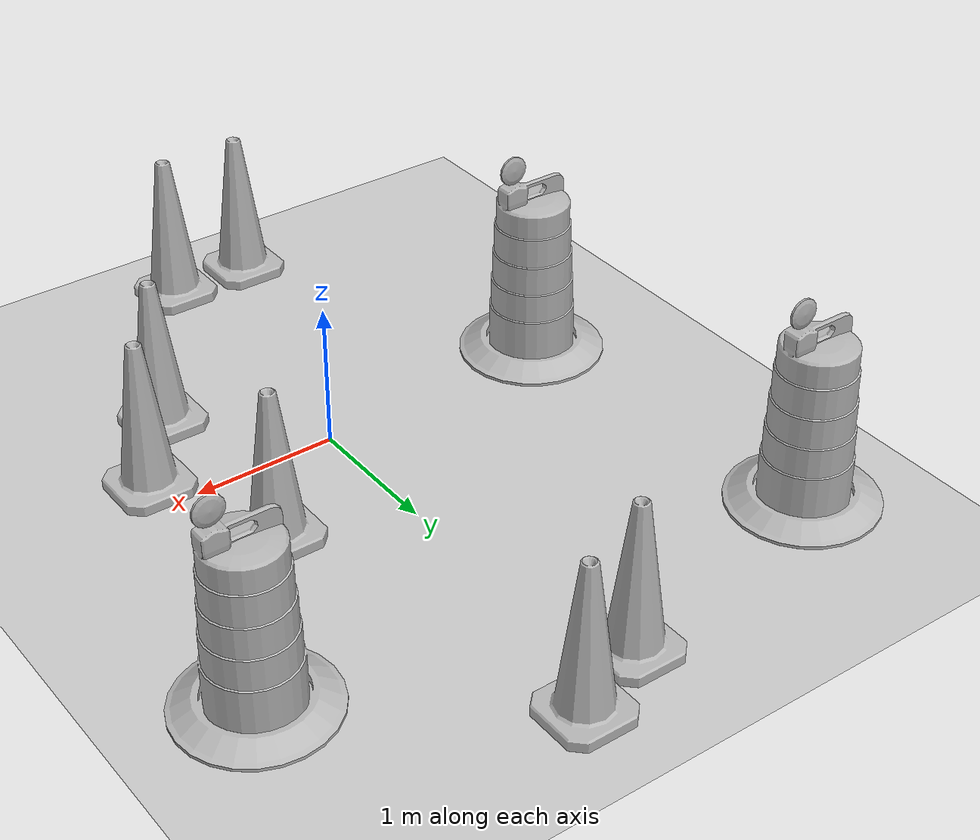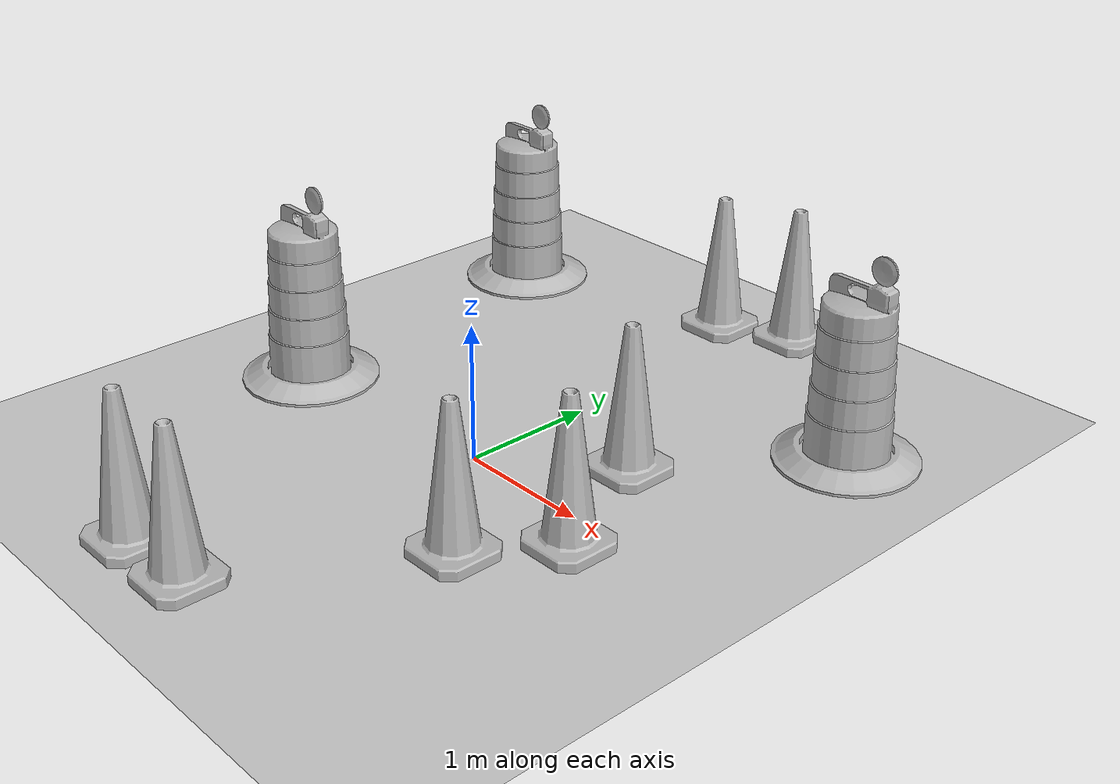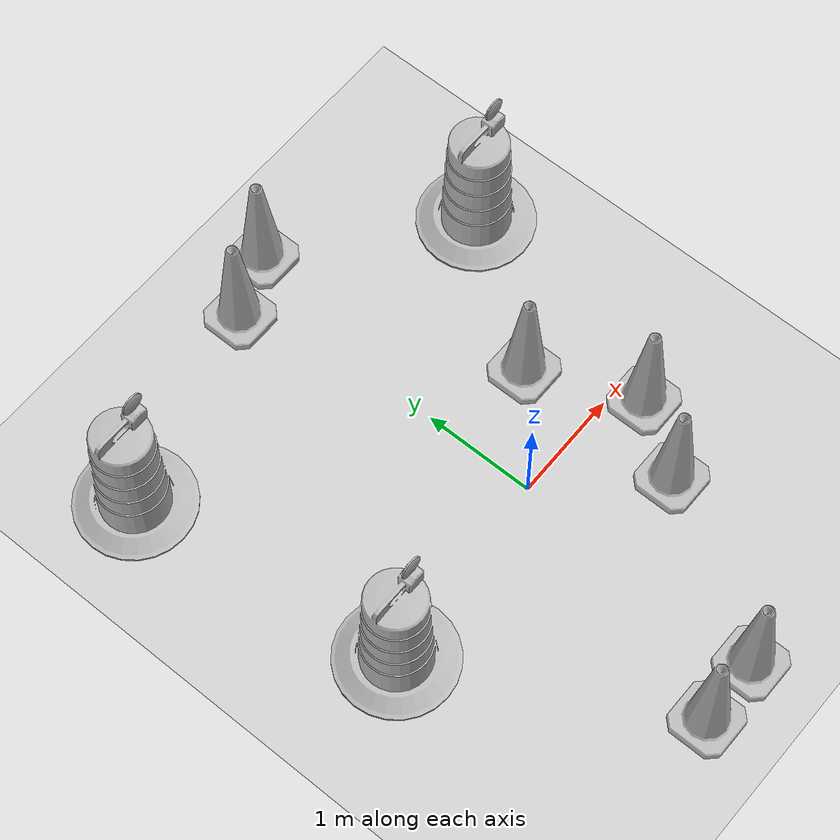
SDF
<sdf version="1.7">
 <world name="default">
  <light name="sun" type="directional">
   <pose>0 0 10 0 -0 0</pose>
   <diffuse>0.8 0.8 0.8 1</diffuse>
   <specular>0.2 0.2 0.2 1</specular>
   <attenuation>
    <range>1000</range>
    <constant>0.9</constant>
    <linear>0.01</linear>
    <quadratic>0.001</quadratic>
   </attenuation>
   <direction>-0.5 0.1 -0.9</direction>
   <spot><inner_angle>0</inner_angle><outer_angle>0</outer_angle><falloff>0</falloff></spot>
  </light>
  <model name="ground_plane">
   <static>1</static>
   <link name="link">
    <collision name="collision">
     <geometry><plane><normal>0 0 1</normal><size>100 100</size></plane></geometry>
     <surface>
      <contact><collide_bitmask>65535</collide_bitmask></contact>
      <friction><ode><mu>100</mu><mu2>50</mu2></ode></friction>
     </surface>
    </collision>
    <visual name="visual">
     <cast_shadows>0</cast_shadows>
     <geometry><plane><normal>0 0 1</normal><size>100 100</size></plane></geometry>
     <material>
      <script><uri>file://media/materials/scripts/gazebo.material</uri><name>Gazebo/Grey</name></script>
     </material>
    </visual>
   </link>
  </model>
  <gravity>0 0 -9.8</gravity>
  <magnetic_field>6e-06 2.3e-05 -4.2e-05</magnetic_field>
  <atmosphere type="adiabatic"/>
  <physics type="ode">
   <max_step_size>0.001</max_step_size>
   <real_time_factor>1</real_time_factor>
   <real_time_update_rate>1000</real_time_update_rate>
  </physics>
  <scene><ambient>0.4 0.4 0.4 1</ambient><background>0.7 0.7 0.7 1</background><shadows>1</shadows></scene>
  <spherical_coordinates>
   <surface_model>EARTH_WGS84</surface_model>
   <latitude_deg>0</latitude_deg>
   <longitude_deg>0</longitude_deg>
   <elevation>0</elevation>
   <heading_deg>0</heading_deg>
  </spherical_coordinates>
  <model name="Construction Barrel">
   <link name="link">
    <inertial>
     <pose>0 0 0.4 0 -0 0</pose>
     <mass>500</mass>
     <inertia><ixx>51.2096</ixx><iyy>51.2096</iyy><izz>25</izz><ixy>0</ixy><ixz>0</ixz><iyz>0</iyz></inertia>
    </inertial>
    <collision name="collision">
     <geometry><mesh><uri>model://construction_barrel/meshes/construction_barrel.dae</uri></mesh></geometry>
    </collision>
    <visual name="visual">
     <geometry><mesh><uri>model://construction_barrel/meshes/construction_barrel.dae</uri></mesh></geometry>
    </visual>
   </link>
   <pose>-2.06492 2.3193 2e-06 2e-06 4e-06 -1.9e-05</pose>
  </model>
  <model name="Construction Barrel_0">
   <link name="link">
    <inertial>
     <pose>0 0 0.4 0 -0 0</pose>
     <mass>500</mass>
     <inertia><ixx>51.2096</ixx><iyy>51.2096</iyy><izz>25</izz><ixy>0</ixy><ixz>0</ixz><iyz>0</iyz></inertia>
    </inertial>
    <collision name="collision">
     <geometry><mesh><uri>model://construction_barrel/meshes/construction_barrel.dae</uri></mesh></geometry>
    </collision>
    <visual name="visual">
     <geometry><mesh><uri>model://construction_barrel/meshes/construction_barrel.dae</uri></mesh></geometry>
    </visual>
   </link>
   <pose>-1.75776 -0.114884 -0 0 0 -1.8e-05</pose>
  </model>
  <model name="Construction Barrel_1">
   <link name="link">
    <inertial>
     <pose>0 0 0.4 0 -0 0</pose>
     <mass>500</mass>
     <inertia><ixx>51.2096</ixx><iyy>51.2096</iyy><izz>25</izz><ixy>0</ixy><ixz>0</ixz><iyz>0</iyz></inertia>
    </inertial>
    <collision name="collision">
     <geometry><mesh><uri>model://construction_barrel/meshes/construction_barrel.dae</uri></mesh></geometry>
    </collision>
    <visual name="visual">
     <geometry><mesh><uri>model://construction_barrel/meshes/construction_barrel.dae</uri></mesh></geometry>
    </visual>
   </link>
   <pose>1.68494 1.88719 -2e-06 0 7e-06 -1.5e-05</pose>
  </model>
  <model name="Construction Cone">
   <link name="link">
    <collision name="collision">
     <geometry>
      <mesh><scale>10 10 10</scale><uri>model://construction_cone/meshes/construction_cone.dae</uri></mesh>
     </geometry>
    </collision>
    <visual name="visual">
     <geometry>
      <mesh><scale>10 10 10</scale><uri>model://construction_cone/meshes/construction_cone.dae</uri></mesh>
     </geometry>
    </visual>
    <inertial>
     <inertia><ixx>1</ixx><ixy>0</ixy><ixz>0</ixz><iyy>1</iyy><iyz>0</iyz><izz>1</izz></inertia>
     <mass>1</mass>
    </inertial>
   </link>
   <pose>0.796348 -0.830084 -1e-06 2e-06 2e-06 0</pose>
  </model>
  <model name="Construction Cone_0">
   <link name="link">
    <collision name="collision">
     <geometry>
      <mesh><scale>10 10 10</scale><uri>model://construction_cone/meshes/construction_cone.dae</uri></mesh>
     </geometry>
    </collision>
    <visual name="visual">
     <geometry>
      <mesh><scale>10 10 10</scale><uri>model://construction_cone/meshes/construction_cone.dae</uri></mesh>
     </geometry>
    </visual>
    <inertial>
     <inertia><ixx>1</ixx><ixy>0</ixy><ixz>0</ixz><iyy>1</iyy><iyz>0</iyz><izz>1</izz></inertia>
     <mass>1</mass>
    </inertial>
   </link>
   <pose>1.20796 -0.241738 -0 0 -0 0</pose>
  </model>
  <model name="Construction Cone_1">
   <link name="link">
    <collision name="collision">
     <geometry>
      <mesh><scale>10 10 10</scale><uri>model://construction_cone/meshes/construction_cone.dae</uri></mesh>
     </geometry>
    </collision>
    <visual name="visual">
     <geometry>
      <mesh><scale>10 10 10</scale><uri>model://construction_cone/meshes/construction_cone.dae</uri></mesh>
     </geometry>
    </visual>
    <inertial>
     <inertia><ixx>1</ixx><ixy>0</ixy><ixz>0</ixz><iyy>1</iyy><iyz>0</iyz><izz>1</izz></inertia>
     <mass>1</mass>
    </inertial>
   </link>
   <pose>0.810054 0.677931 -1e-05 0 -0 0</pose>
  </model>
  <model name="Construction Cone_2">
   <link name="link">
    <collision name="collision">
     <geometry>
      <mesh><scale>10 10 10</scale><uri>model://construction_cone/meshes/construction_cone.dae</uri></mesh>
     </geometry>
    </collision>
    <visual name="visual">
     <geometry>
      <mesh><scale>10 10 10</scale><uri>model://construction_cone/meshes/construction_cone.dae</uri></mesh>
     </geometry>
    </visual>
    <inertial>
     <inertia><ixx>1</ixx><ixy>0</ixy><ixz>0</ixz><iyy>1</iyy><iyz>0</iyz><izz>1</izz></inertia>
     <mass>1</mass>
    </inertial>
   </link>
   <pose>-0.654663 -2.24839 -1e-05 -0 -0 -0</pose>
  </model>
  <model name="Construction Cone_3">
   <link name="link">
    <collision name="collision">
     <geometry>
      <mesh><scale>10 10 10</scale><uri>model://construction_cone/meshes/construction_cone.dae</uri></mesh>
     </geometry>
    </collision>
    <visual name="visual">
     <geometry>
      <mesh><scale>10 10 10</scale><uri>model://construction_cone/meshes/construction_cone.dae</uri></mesh>
     </geometry>
    </visual>
    <inertial>
     <inertia><ixx>1</ixx><ixy>0</ixy><ixz>0</ixz><iyy>1</iyy><iyz>0</iyz><izz>1</izz></inertia>
     <mass>1</mass>
    </inertial>
   </link>
   <pose>-0.285807 2.78592 -0 0 -0 0</pose>
  </model>
  <model name="Construction Cone_4">
   <link name="link">
    <collision name="collision">
     <geometry>
      <mesh><scale>10 10 10</scale><uri>model://construction_cone/meshes/construction_cone.dae</uri></mesh>
     </geometry>
    </collision>
    <visual name="visual">
     <geometry>
      <mesh><scale>10 10 10</scale><uri>model://construction_cone/meshes/construction_cone.dae</uri></mesh>
     </geometry>
    </visual>
    <inertial>
     <inertia><ixx>1</ixx><ixy>0</ixy><ixz>0</ixz><iyy>1</iyy><iyz>0</iyz><izz>1</izz></inertia>
     <mass>1</mass>
    </inertial>
   </link>
   <pose>0.261952 3.01773 -0 0 -0 0</pose>
  </model>
  <model name="Construction Cone_5">
   <link name="link">
    <collision name="collision">
     <geometry>
      <mesh><scale>10 10 10</scale><uri>model://construction_cone/meshes/construction_cone.dae</uri></mesh>
     </geometry>
    </collision>
    <visual name="visual">
     <geometry>
      <mesh><scale>10 10 10</scale><uri>model://construction_cone/meshes/construction_cone.dae</uri></mesh>
     </geometry>
    </visual>
    <inertial>
     <inertia><ixx>1</ixx><ixy>0</ixy><ixz>0</ixz><iyy>1</iyy><iyz>0</iyz><izz>1</izz></inertia>
     <mass>1</mass>
    </inertial>
   </link>
   <pose>-0.073245 -2.23833 -0 0 -0 0</pose>
  </model>
 </world>
</sdf>
